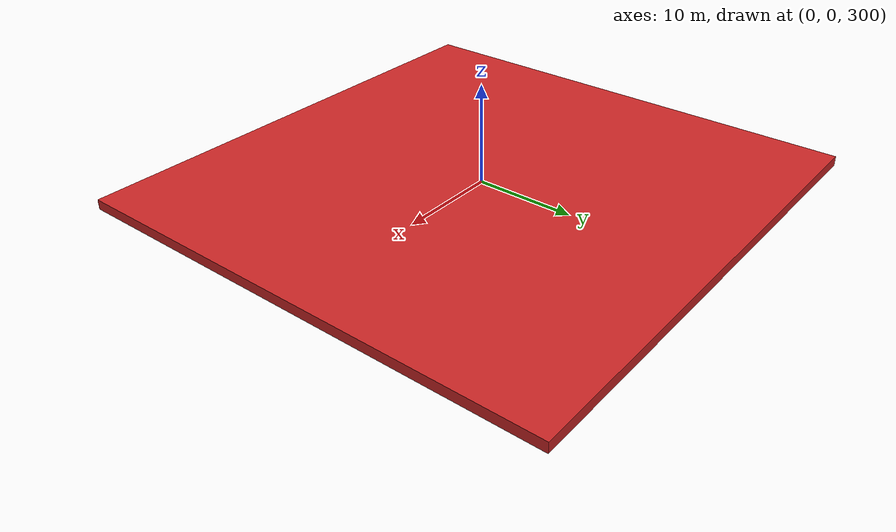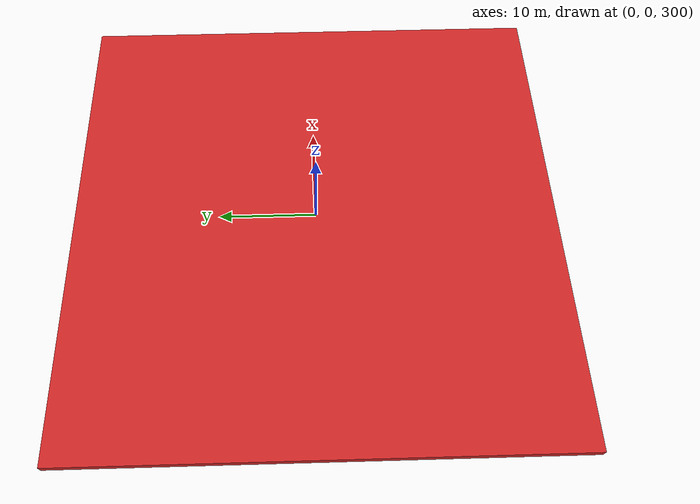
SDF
<?xml version="1.0" ?>
<sdf version="1.5">
  <model name="rect area">
    <pose>0 0 300 0 0 0</pose>
    <static>false</static>
    <link name="link">
      <inertial>
        <mass>2000</mass>
        <inertia>
          <ixx>66666666.666666</ixx>
          <ixy>0</ixy>
          <ixz>0</ixz>
          <iyy>66666666.666666</iyy>
          <iyz>0</iyz>
          <izz>13333333.333333</izz>
        </inertia>
      </inertial>
      <collision name="collision">
        <geometry>
          <box>
              <size>50 50 1</size>
          </box>
        </geometry>
      </collision>
      <visual name="visual">
        <geometry>
          <box>
            <size>50 50 1</size>
          </box>
	</geometry>
	<material>
          <script>
            <name>Gazebo/Red</name>
            <uri>file://media/materials/scripts/gazebo.material</uri>
          </script>
        </material>
      </visual>
    </link>
  </model>
</sdf>
